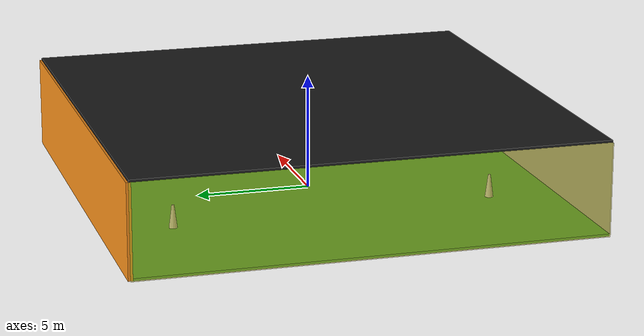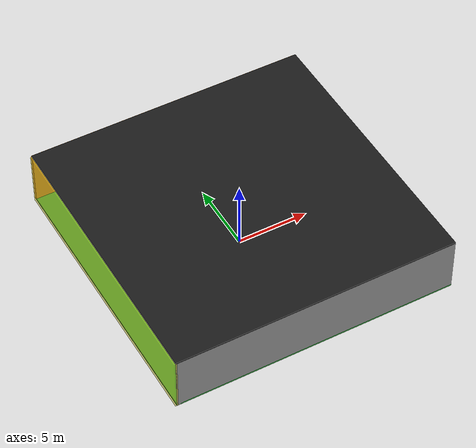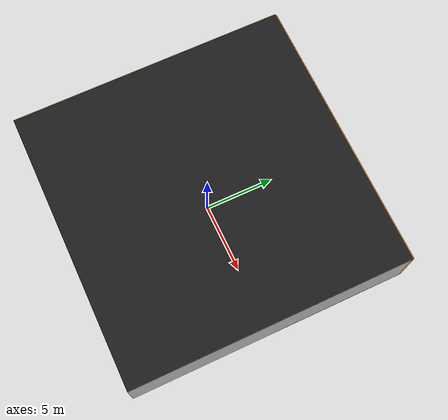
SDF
<sdf version="1.4">
 <world name="default">
  <physics type="ode">
   <max_step_size>0.001</max_step_size>
   <real_time_factor>1</real_time_factor>
   <real_time_update_rate>1000</real_time_update_rate>
   <gravity>0 0 -9.8</gravity>
  </physics>
  <scene><ambient>0.4 0.4 0.4 1</ambient><background>0.7 0.7 0.7 1</background><shadows>1</shadows></scene>
  <model name="Surrounding">
   <static>1</static>
   <link name="Ceiling">
    <collision name="Ceiling_Collision"><geometry><box><size>20 20 0.1</size></box></geometry></collision>
    <visual name="Ceiling_Visual">
     <geometry><box><size>20 20 0.1</size></box></geometry>
     <material>
      <script><uri>file://media/materials/scripts/gazebo.material</uri><name>Gazebo/FlatBlack</name></script>
     </material>
    </visual>
    <pose>0 0 4.05 0 0 0</pose>
   </link>
   <link name="Wall_South">
    <collision name="Wall_South_Collision">
     <geometry><box><size>20 0 4</size></box></geometry>
     <pose>0 0 2 0 -0 0</pose>
    </collision>
    <visual name="Wall_South_Visual">
     <pose>0 0 2 0 -0 0</pose>
     <geometry><box><size>20 0 4</size></box></geometry>
     <material>
      <script><uri>file://media/materials/scripts/gazebo.material</uri><name>Gazebo/Grey</name></script>
     </material>
    </visual>
    <velocity_decay><linear>0</linear><angular>0</angular></velocity_decay>
    <pose>0 -10 0 0 -0 0</pose>
   </link>
   <link name="Wall_East">
    <collision name="Wall_21_Collision">
     <geometry><box><size>20 0 4</size></box></geometry>
     <pose>0 0 2 0 -0 0</pose>
    </collision>
    <visual name="Wall_21_Visual">
     <pose>0 0 2 0 -0 0</pose>
     <geometry><box><size>20 0 4</size></box></geometry>
     <material>
      <script><uri>file://media/materials/scripts/gazebo.material</uri><name>Gazebo/Pioneer2Body</name></script>
     </material>
    </visual>
    <velocity_decay><linear>0</linear><angular>0</angular></velocity_decay>
    <pose>10 0 0 0 -0 1.5708</pose>
   </link>
   <link name="Wall_North">
    <collision name="Wall_22_Collision">
     <geometry><box><size>20 0.2 4</size></box></geometry>
     <pose>0 0 2 0 -0 0</pose>
    </collision>
    <visual name="Wall_22_Visual">
     <pose>0 0 2 0 -0 0</pose>
     <geometry><box><size>20 0.2 4</size></box></geometry>
     <material>
      <script><uri>file://media/materials/scripts/gazebo.material</uri><name>Gazebo/Orange</name></script>
     </material>
    </visual>
    <velocity_decay><linear>0</linear><angular>0</angular></velocity_decay>
    <pose>0 10 0 0 -0 0</pose>
   </link>
   <link name="Wall_West">
    <collision name="Wall_23_Collision">
     <geometry><box><size>20 0.2 4</size></box></geometry>
     <pose>0 0 2 0 -0 0</pose>
    </collision>
    <visual name="Wall_23_Visual">
     <pose>0 0 2 0 -0 0</pose>
     <geometry><box><size>20 0.2 4</size></box></geometry>
     <material>
      <script>
       <uri>file://media/materials/scripts/gazebo.material</uri>
       <name>Gazebo/YellowTransparent</name>
      </script>
     </material>
    </visual>
    <velocity_decay><linear>0</linear><angular>0</angular></velocity_decay>
    <pose>-10 0 0 0 0 -1.5708</pose>
   </link>
   <link name="Ground_link">
    <collision name="collision">
     <pose>0 0 .05 0 -0 0</pose>
     <geometry><box><size>20 20 0.1</size></box></geometry>
    </collision>
    <visual name="visual">
     <pose>0 0 .05 0 -0 0</pose>
     <geometry><box><size>20 20 0.1</size></box></geometry>
     <material>
      <script><uri>file://media/materials/scripts/gazebo.material</uri><name>Gazebo/Green</name></script>
     </material>
    </visual>
   </link>
   <static>1</static>
  </model>
  <spherical_coordinates>
   <surface_model>EARTH_WGS84</surface_model>
   <latitude_deg>0</latitude_deg>
   <longitude_deg>0</longitude_deg>
   <elevation>0</elevation>
   <heading_deg>0</heading_deg>
  </spherical_coordinates>
  <light name="lightball_0" type="diffuse">
   <diffuse>0.8 0.8 0.8 1</diffuse>
   <specular>0.2 0.2 0.2 1</specular>
   <attenuation>
    <range>100</range>
    <constant>0.7</constant>
    <linear>0.01</linear>
    <quadratic>0.001</quadratic>
   </attenuation>
   <direction>-0.5 0.1 -0.9</direction>
   <pose>8.63833816201 0.168476022163 2.65187186797 0 0 0</pose>
  </light>
  <light name="lightball_1" type="diffuse">
   <diffuse>0.8 0.8 0.8 1</diffuse>
   <specular>0.2 0.2 0.2 1</specular>
   <attenuation>
    <range>100</range>
    <constant>0.7</constant>
    <linear>0.01</linear>
    <quadratic>0.001</quadratic>
   </attenuation>
   <direction>-0.5 0.1 -0.9</direction>
   <pose>5.95938592308 9.47212784335 3.30385424741 0 0 0</pose>
  </light>
  <light name="lightball_2" type="diffuse">
   <diffuse>0.8 0.8 0.8 1</diffuse>
   <specular>0.2 0.2 0.2 1</specular>
   <attenuation>
    <range>100</range>
    <constant>0.7</constant>
    <linear>0.01</linear>
    <quadratic>0.001</quadratic>
   </attenuation>
   <direction>-0.5 0.1 -0.9</direction>
   <pose>-8.41413024125 -9.26503276813 3.32701010475 0 0 0</pose>
  </light>
  <light name="lightball_3" type="diffuse">
   <diffuse>0.8 0.8 0.8 1</diffuse>
   <specular>0.2 0.2 0.2 1</specular>
   <attenuation>
    <range>100</range>
    <constant>0.7</constant>
    <linear>0.01</linear>
    <quadratic>0.001</quadratic>
   </attenuation>
   <direction>-0.5 0.1 -0.9</direction>
   <pose>9.06061780609 3.25320083681 1.6708378468 0 0 0</pose>
  </light>
  <light name="lightball_4" type="diffuse">
   <diffuse>0.8 0.8 0.8 1</diffuse>
   <specular>0.2 0.2 0.2 1</specular>
   <attenuation>
    <range>100</range>
    <constant>0.7</constant>
    <linear>0.01</linear>
    <quadratic>0.001</quadratic>
   </attenuation>
   <direction>-0.5 0.1 -0.9</direction>
   <pose>-8.11757033054 -4.85056533355 1.46939821486 0 0 0</pose>
  </light>
  <light name="lightball_5" type="diffuse">
   <diffuse>0.8 0.8 0.8 1</diffuse>
   <specular>0.2 0.2 0.2 1</specular>
   <attenuation>
    <range>100</range>
    <constant>0.7</constant>
    <linear>0.01</linear>
    <quadratic>0.001</quadratic>
   </attenuation>
   <direction>-0.5 0.1 -0.9</direction>
   <pose>-9.44142753813 -0.834615807815 1.81942818436 0 0 0</pose>
  </light>
  <light name="lightball_6" type="diffuse">
   <diffuse>0.8 0.8 0.8 1</diffuse>
   <specular>0.2 0.2 0.2 1</specular>
   <attenuation>
    <range>100</range>
    <constant>0.7</constant>
    <linear>0.01</linear>
    <quadratic>0.001</quadratic>
   </attenuation>
   <direction>-0.5 0.1 -0.9</direction>
   <pose>2.32830593121 -5.72739522316 1.32986175317 0 0 0</pose>
  </light>
  <include>
   <uri>model://construction_cone</uri>
   <pose>-3.85098093877 -7.02392055771 0 0 0 2.74297617749</pose>
  </include>
  <include>
   <uri>model://construction_cone</uri>
   <pose>-4.29291249543 7.02848807257 0 0 0 2.3973741101</pose>
  </include>
  <include><uri>model://cabinet</uri><pose>3.88675845248 8.27228529624 0 0 0 0.684023063568</pose></include>
 </world>
</sdf>

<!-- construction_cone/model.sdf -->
<sdf version="1.5">
  <model name="Construction Cone">
    <link name="link">
      <collision name="collision">
        <geometry>
          <mesh>
            <scale>10 10 10</scale>
            <uri>file://isr-testbed/construction_cone/meshes/construction_cone.dae</uri>
          </mesh>
        </geometry>
      </collision>
      <visual name="visual">
        <geometry>
          <mesh>
            <scale>10 10 10</scale>
            <uri>file://isr-testbed/construction_cone/meshes/construction_cone.dae</uri>
          </mesh>
        </geometry>
      </visual>
    </link>
  </model>
</sdf>

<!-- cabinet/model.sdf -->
<sdf version="1.5">
  <model name="cabinet">
    <static>true</static>
    <link name="cabinet_bottom_plate">
      <inertial>
        <pose>0 0 -1 0 0 0</pose>
        <inertia>
          <ixx>2.050000</ixx>
          <ixy>0</ixy>
          <ixz>0</ixz>
          <iyy>2.050000</iyy>
          <iyz>0</iyz>
          <izz>2.050000</izz>
        </inertia>
        <mass>25.000000</mass>
      </inertial>
      <collision name="cabinet_bottom_plate_geom">
        <pose>0 0 0.010000 0 0 0</pose>
        <geometry>
          <box>
            <size>0.450000 0.450000 0.020000</size>
          </box>
        </geometry>
      </collision>
      <visual name="cabinet_bottom_plate_geom_visual">
        <pose>0 0 0.010000 0 0 0</pose>
        <geometry>
          <box>
            <size>0.450000 0.450000 0.020000</size>
          </box>
        </geometry>
        <material>
          <script>
            <uri>model://media/materials/scripts/gazebo.material</uri>
            <name>Gazebo/Wood</name>
          </script>
        </material>
      </visual>
      <collision name="cabinet_bottom_plate_geom_cabinet_back_plate">
        <pose>0.235000 0 0.510000 0 0 0</pose>
        <geometry>
          <box>
            <size>0.020000 0.450000 1.020000</size>
          </box>
        </geometry>
      </collision>
      <visual name="cabinet_bottom_plate_geom_cabinet_back_plate_visual">
        <pose>0.235000 0 0.510000 0 0 0</pose>
        <geometry>
          <box>
            <size>0.020000 0.450000 1.020000</size>
          </box>
        </geometry>
        <material>
          <script>
            <uri>model://media/materials/scripts/gazebo.material</uri>
            <name>Gazebo/Wood</name>
          </script>
        </material>
      </visual>
      <collision name="cabinet_bottom_plate_geom_cabinet_left_plate">
        <pose>0 0.235000 0.510000 0 0 0</pose>
        <geometry>
          <box>
            <size>0.450000 0.020000 1.020000</size>
          </box>
        </geometry>
      </collision>
      <visual name="cabinet_bottom_plate_geom_cabinet_left_plate_visual">
        <pose>0 0.235000 0.510000 0 0 0</pose>
        <geometry>
          <box>
            <size>0.450000 0.020000 1.020000</size>
          </box>
        </geometry>
        <material>
          <script>
            <uri>model://media/materials/scripts/gazebo.material</uri>
            <name>Gazebo/Wood</name>
          </script>
        </material>
      </visual>
      <collision name="cabinet_bottom_plate_geom_cabinet_middle_plate">
        <pose>0 0 0.510000 0 0 0</pose>
        <geometry>
          <box>
            <size>0.450000 0.450000 0.020000</size>
          </box>
        </geometry>
      </collision>
      <visual name="cabinet_bottom_plate_geom_cabinet_middle_plate_visual">
        <pose>0 0 0.510000 0 0 0</pose>
        <geometry>
          <box>
            <size>0.450000 0.450000 0.020000</size>
          </box>
        </geometry>
        <material>
          <script>
            <uri>model://media/materials/scripts/gazebo.material</uri>
            <name>Gazebo/Wood</name>
          </script>
        </material>
      </visual>
      <collision name="cabinet_bottom_plate_geom_cabinet_right_plate">
        <pose>0 -0.235000 0.510000 0 0 0</pose>
        <geometry>
          <box>
            <size>0.450000 0.020000 1.020000</size>
          </box>
        </geometry>
      </collision>
      <visual name="cabinet_bottom_plate_geom_cabinet_right_plate_visual">
        <pose>0 -0.235000 0.510000 0 0 0</pose>
        <geometry>
          <box>
            <size>0.450000 0.020000 1.020000</size>
          </box>
        </geometry>
        <material>
          <script>
            <uri>model://media/materials/scripts/gazebo.material</uri>
            <name>Gazebo/Wood</name>
          </script>
        </material>
      </visual>
      <collision name="cabinet_bottom_plate_geom_cabinet_top_plate">
        <pose>0 0 1.010000 0 0 0</pose>
        <geometry>
          <box>
            <size>0.450000 0.450000 0.020000</size>
          </box>
        </geometry>
      </collision>
      <visual name="cabinet_bottom_plate_geom_cabinet_top_plate_visual">
        <pose>0 0 1.010000 0 0 0</pose>
        <geometry>
          <box>
            <size>0.450000 0.450000 0.020000</size>
          </box>
        </geometry>
        <material>
          <script>
            <uri>model://media/materials/scripts/gazebo.material</uri>
            <name>Gazebo/Wood</name>
          </script>
        </material>
      </visual>
    </link>
  </model>
</sdf>
